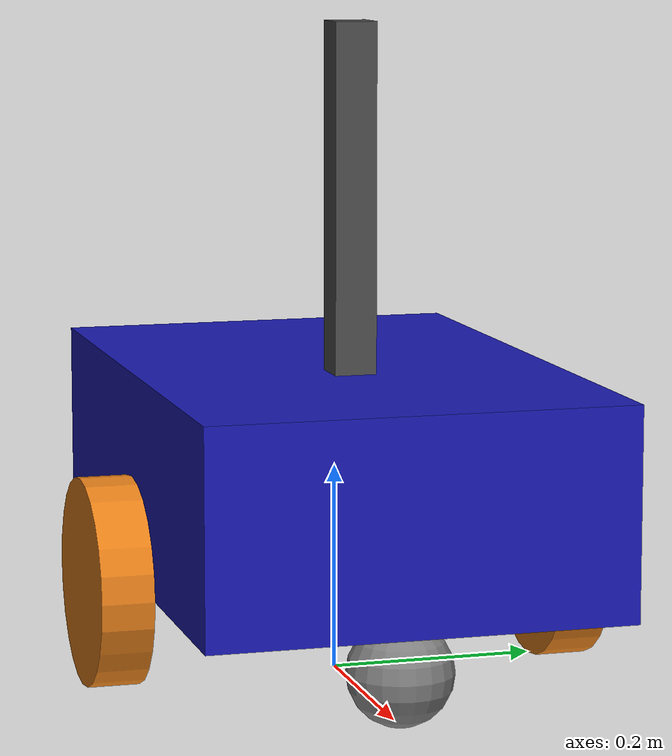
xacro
<?xml version="1.0"?>
<robot xmlns:xacro="http://www.ros.org/wiki/xacro">

    <xacro:property name="base_length" value="0.6" />
    <xacro:property name="base_width" value="0.4" />
    <xacro:property name="base_height" value="0.2" />
    <xacro:property name="wheel_radius" value="0.1" />
    <xacro:property name="wheel_length" value="0.05" />
    <xacro:property name="wheel_separation" value="0.45" />

    <!-- base_footprint is the 2D projection on the ground -->
    <link name="base_footprint" />

    <link name="base_link">
        <!-- Localbot chassis: 0.6 × 0.4 × 0.2 m navy-blue box.
             Matches Localbot model.sdf base_link visual exactly.
             No external mesh dependency — box geometry is self-contained. -->
        <visual>
            <origin xyz="0 0 0" rpy="0 0 0" />
            <geometry>
                <box size="${base_length} ${base_width} ${base_height}" />
            </geometry>
            <material name="navy_blue">
                <color rgba="0.1 0.1 0.7 1.0" />
            </material>
        </visual>
        <!-- Camera mast visual: thin pole connecting chassis top to camera_link.
             Purely decorative — makes RViz match Gazebo appearance. -->
        <visual>
            <origin xyz="0.0553 0 0.215" rpy="0 0 0" />
            <geometry>
                <box size="0.04 0.04 0.43" />
            </geometry>
            <material name="dark_grey">
                <color rgba="0.3 0.3 0.3 1.0" />
            </material>
        </visual>
        <collision>
            <geometry>
                <box size="${base_length} ${base_width} ${base_height}" />
            </geometry>
        </collision>
        <inertial>
            <mass value="15.0" />
            <origin xyz="0 0 0" rpy="0 0 0" />
            <inertia ixx="${(15.0/12.0) * (base_width*base_width + base_height*base_height)}" ixy="0" ixz="0"
                     iyy="${(15.0/12.0) * (base_length*base_length + base_height*base_height)}" iyz="0"
                     izz="${(15.0/12.0) * (base_length*base_length + base_width*base_width)}" />
        </inertial>
    </link>

    <joint name="base_joint" type="fixed">
        <parent link="base_footprint" />
        <child link="base_link" />
        <origin xyz="0 0 ${wheel_radius + base_height / 2.0}" rpy="0 0 0" />
    </joint>

    <!-- Macro for Drive Wheels -->
    <xacro:macro name="wheel" params="prefix y_offset">
        <link name="${prefix}_wheel_link">
            <!-- Orange cylinder wheel — matches Localbot SDF wheel visual.
                 rpy rotates cylinder from default Z-axis to Y-axis (wheel axle direction). -->
            <visual>
                <origin xyz="0 0 0" rpy="0 0 0" />
                <geometry>
                    <cylinder radius="${wheel_radius}" length="${wheel_length}" />
                </geometry>
                <material name="orange">
                    <color rgba="0.9 0.5 0.1 1.0" />
                </material>
            </visual>
            <collision>
                <geometry>
                    <cylinder radius="${wheel_radius}" length="${wheel_length}" />
                </geometry>
            </collision>
            <inertial>
                <mass value="2.0" />
                <origin xyz="0 0 0" rpy="0 0 0" />
                <inertia ixx="${(2.0/12.0)*(3*wheel_radius*wheel_radius + wheel_length*wheel_length)}" ixy="0" ixz="0"
                         iyy="${(2.0/12.0)*(3*wheel_radius*wheel_radius + wheel_length*wheel_length)}" iyz="0"
                         izz="${0.5 * 2.0 * wheel_radius * wheel_radius}" />
            </inertial>
        </link>

        <joint name="${prefix}_wheel_joint" type="continuous">
            <parent link="base_link" />
            <child link="${prefix}_wheel_link" />
            <origin xyz="0 ${y_offset} ${-base_height / 2.0}" rpy="${-pi/2} 0 0" />
            <axis xyz="0 0 1" />
        </joint>

        <gazebo reference="${prefix}_wheel_link">
            <mu1>1.2</mu1>
            <mu2>1.2</mu2>
            <kp>1000000.0</kp>
            <kd>100.0</kd>
        </gazebo>
    </xacro:macro>

    <xacro:wheel prefix="left" y_offset="${wheel_separation / 2.0}" />
    <xacro:wheel prefix="right" y_offset="${-wheel_separation / 2.0}" />

    <!-- Macro for Caster Wheels (Front & Rear) -->
    <xacro:macro name="caster" params="prefix x_offset">
        <link name="${prefix}_caster_wheel_link">
            <visual>
                <geometry>
                    <sphere radius="${wheel_radius / 2.0}" />
                </geometry>
                <material name="grey">
                    <color rgba="0.5 0.5 0.5 1.0" />
                </material>
            </visual>
            <collision>
                <geometry>
                    <sphere radius="${wheel_radius / 2.0}" />
                </geometry>
            </collision>
            <inertial>
                <mass value="0.5" />
                <origin xyz="0 0 0" rpy="0 0 0" />
                <inertia ixx="0.001" ixy="0" ixz="0" iyy="0.001" iyz="0" izz="0.001" />
            </inertial>
        </link>

        <joint name="${prefix}_caster_wheel_joint" type="fixed">
            <parent link="base_link" />
            <child link="${prefix}_caster_wheel_link" />
            <origin xyz="${x_offset} 0 ${-base_height / 2.0 - wheel_radius / 2.0}" rpy="0 0 0" />
        </joint>

        <gazebo reference="${prefix}_caster_wheel_link">
            <mu1>0.05</mu1>
            <mu2>0.05</mu2>
        </gazebo>
    </xacro:macro>

    <xacro:caster prefix="front" x_offset="${base_length / 2.0 - 0.08}" />
    <xacro:caster prefix="rear" x_offset="${-base_length / 2.0 + 0.08}" />

</robot>
